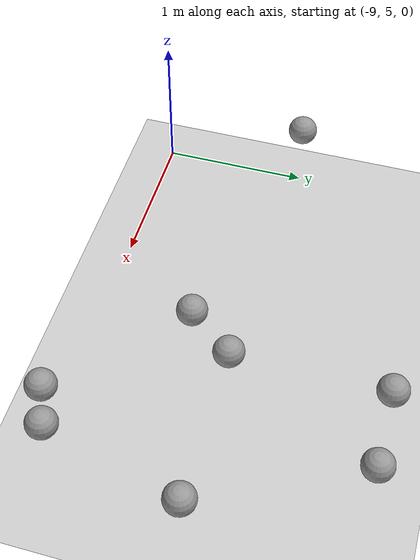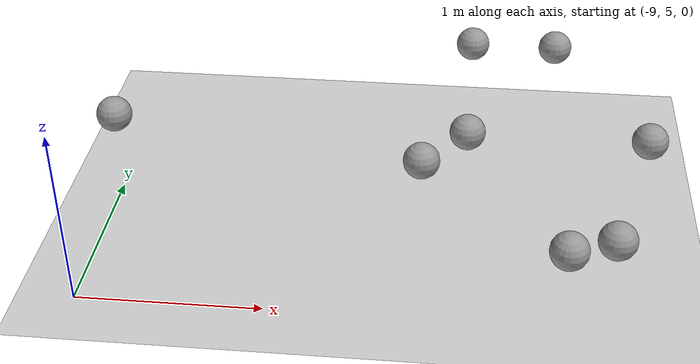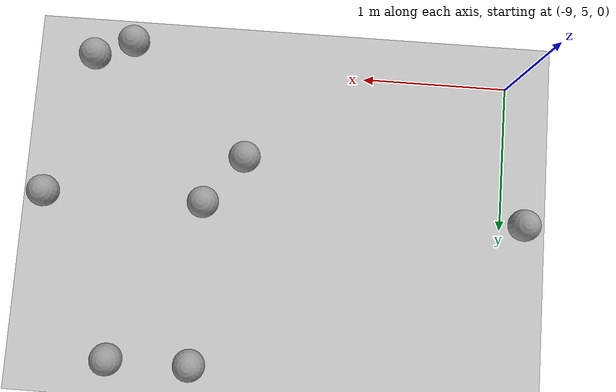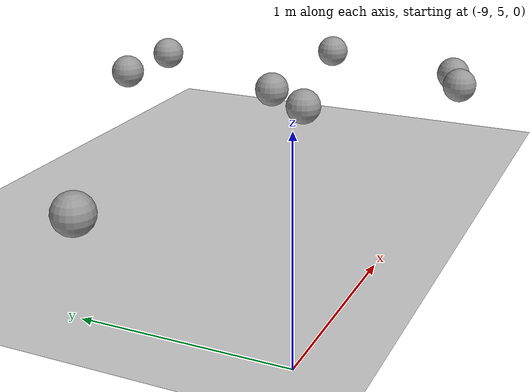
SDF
<sdf version="1.7">
 <world name="default">
  <model name="ground_plane">
   <static>1</static>
   <link name="link">
    <collision name="collision">
     <geometry><plane><normal>0 0 1</normal><size>100 100</size></plane></geometry>
     <surface>
      <contact><collide_bitmask>65535</collide_bitmask></contact>
      <friction><ode><mu>100</mu><mu2>50</mu2></ode></friction>
     </surface>
    </collision>
    <visual name="visual">
     <cast_shadows>0</cast_shadows>
     <geometry><plane><normal>0 0 1</normal><size>100 100</size></plane></geometry>
     <material>
      <script><uri>file://media/materials/scripts/gazebo.material</uri><name>Gazebo/Grey</name></script>
     </material>
    </visual>
   </link>
  </model>
  <model name="0.1unit_sphere_clone_3">
   <link name="link">
    <inertial>
     <mass>1</mass>
     <inertia><ixx>0.1</ixx><ixy>0</ixy><ixz>0</ixz><iyy>0.1</iyy><iyz>0</iyz><izz>0.1</izz></inertia>
    </inertial>
    <visual name="visual">
     <geometry><sphere><radius>0.1</radius></sphere></geometry>
     <material>
      <script><name>Gazebo/Grey</name><uri>file://media/materials/scripts/gazebo.material</uri></script>
      <shader type="pixel"><normal_map>__default__</normal_map></shader>
      <ambient>0.3 0.3 0.3 1</ambient>
      <diffuse>0.7 0.7 0.7 1</diffuse>
      <specular>0.01 0.01 0.01 1</specular>
      <emissive>0 0 0 1</emissive>
     </material>
    </visual>
    <collision name="collision">
     <geometry><sphere><radius>0.1</radius></sphere></geometry>
     <surface>
      <friction>
       <ode><mu>1</mu><mu2>1</mu2><fdir1>0 0 0</fdir1><slip1>0</slip1><slip2>0</slip2></ode>
       <torsional>
        <coefficient>1</coefficient>
        <patch_radius>0</patch_radius>
        <surface_radius>0</surface_radius>
        <use_patch_radius>1</use_patch_radius>
        <ode><slip>0</slip></ode>
       </torsional>
      </friction>
      <bounce><restitution_coefficient>0</restitution_coefficient><threshold>1e+06</threshold></bounce>
      <contact>
       <collide_without_contact>0</collide_without_contact>
       <collide_without_contact_bitmask>1</collide_without_contact_bitmask>
       <collide_bitmask>1</collide_bitmask>
       <ode>
        <soft_cfm>0</soft_cfm>
        <soft_erp>0.2</soft_erp>
        <kp>1e+13</kp>
        <kd>1</kd>
        <max_vel>0.01</max_vel>
        <min_depth>0</min_depth>
       </ode>
       <bullet>
        <split_impulse>1</split_impulse>
        <split_impulse_penetration_threshold>-0.01</split_impulse_penetration_threshold>
        <soft_cfm>0</soft_cfm>
        <soft_erp>0.2</soft_erp>
        <kp>1e+13</kp>
        <kd>1</kd>
       </bullet>
      </contact>
     </surface>
    </collision>
   </link>
   <static>0</static>
   <pose>-7.23602 5.69775 0.5 0 -0 0</pose>
  </model>
  <model name="0.1unit_sphere_clone_4">
   <link name="link">
    <inertial>
     <mass>1</mass>
     <inertia><ixx>0.1</ixx><ixy>0</ixy><ixz>0</ixz><iyy>0.1</iyy><iyz>0</iyz><izz>0.1</izz></inertia>
    </inertial>
    <visual name="visual">
     <geometry><sphere><radius>0.1</radius></sphere></geometry>
     <material>
      <script><name>Gazebo/Grey</name><uri>file://media/materials/scripts/gazebo.material</uri></script>
      <shader type="pixel"><normal_map>__default__</normal_map></shader>
      <ambient>0.3 0.3 0.3 1</ambient>
      <diffuse>0.7 0.7 0.7 1</diffuse>
      <specular>0.01 0.01 0.01 1</specular>
      <emissive>0 0 0 1</emissive>
     </material>
    </visual>
    <collision name="collision">
     <geometry><sphere><radius>0.1</radius></sphere></geometry>
     <surface>
      <friction>
       <ode><mu>1</mu><mu2>1</mu2><fdir1>0 0 0</fdir1><slip1>0</slip1><slip2>0</slip2></ode>
       <torsional>
        <coefficient>1</coefficient>
        <patch_radius>0</patch_radius>
        <surface_radius>0</surface_radius>
        <use_patch_radius>1</use_patch_radius>
        <ode><slip>0</slip></ode>
       </torsional>
      </friction>
      <bounce><restitution_coefficient>0</restitution_coefficient><threshold>1e+06</threshold></bounce>
      <contact>
       <collide_without_contact>0</collide_without_contact>
       <collide_without_contact_bitmask>1</collide_without_contact_bitmask>
       <collide_bitmask>1</collide_bitmask>
       <ode>
        <soft_cfm>0</soft_cfm>
        <soft_erp>0.2</soft_erp>
        <kp>1e+13</kp>
        <kd>1</kd>
        <max_vel>0.01</max_vel>
        <min_depth>0</min_depth>
       </ode>
       <bullet>
        <split_impulse>1</split_impulse>
        <split_impulse_penetration_threshold>-0.01</split_impulse_penetration_threshold>
        <soft_cfm>0</soft_cfm>
        <soft_erp>0.2</soft_erp>
        <kp>1e+13</kp>
        <kd>1</kd>
       </bullet>
      </contact>
     </surface>
    </collision>
   </link>
   <static>0</static>
   <pose>-6 6 0.5 0 -0 0</pose>
  </model>
  <model name="0.1unit_sphere_clone_5">
   <link name="link">
    <inertial>
     <mass>1</mass>
     <inertia><ixx>0.1</ixx><ixy>0</ixy><ixz>0</ixz><iyy>0.1</iyy><iyz>0</iyz><izz>0.1</izz></inertia>
    </inertial>
    <visual name="visual">
     <geometry><sphere><radius>0.1</radius></sphere></geometry>
     <material>
      <script><name>Gazebo/Grey</name><uri>file://media/materials/scripts/gazebo.material</uri></script>
      <shader type="pixel"><normal_map>__default__</normal_map></shader>
      <ambient>0.3 0.3 0.3 1</ambient>
      <diffuse>0.7 0.7 0.7 1</diffuse>
      <specular>0.01 0.01 0.01 1</specular>
      <emissive>0 0 0 1</emissive>
     </material>
    </visual>
    <collision name="collision">
     <geometry><sphere><radius>0.1</radius></sphere></geometry>
     <surface>
      <friction>
       <ode><mu>1</mu><mu2>1</mu2><fdir1>0 0 0</fdir1><slip1>0</slip1><slip2>0</slip2></ode>
       <torsional>
        <coefficient>1</coefficient>
        <patch_radius>0</patch_radius>
        <surface_radius>0</surface_radius>
        <use_patch_radius>1</use_patch_radius>
        <ode><slip>0</slip></ode>
       </torsional>
      </friction>
      <bounce><restitution_coefficient>0</restitution_coefficient><threshold>1e+06</threshold></bounce>
      <contact>
       <collide_without_contact>0</collide_without_contact>
       <collide_without_contact_bitmask>1</collide_without_contact_bitmask>
       <collide_bitmask>1</collide_bitmask>
       <ode>
        <soft_cfm>0</soft_cfm>
        <soft_erp>0.2</soft_erp>
        <kp>1e+13</kp>
        <kd>1</kd>
        <max_vel>0.01</max_vel>
        <min_depth>0</min_depth>
       </ode>
       <bullet>
        <split_impulse>1</split_impulse>
        <split_impulse_penetration_threshold>-0.01</split_impulse_penetration_threshold>
        <soft_cfm>0</soft_cfm>
        <soft_erp>0.2</soft_erp>
        <kp>1e+13</kp>
        <kd>1</kd>
       </bullet>
      </contact>
     </surface>
    </collision>
   </link>
   <static>0</static>
   <pose>-7 7 0.5 0 -0 0</pose>
  </model>
  <model name="0.1unit_sphere_clone_6">
   <link name="link">
    <inertial>
     <mass>1</mass>
     <inertia><ixx>0.1</ixx><ixy>0</ixy><ixz>0</ixz><iyy>0.1</iyy><iyz>0</iyz><izz>0.1</izz></inertia>
    </inertial>
    <visual name="visual">
     <geometry><sphere><radius>0.1</radius></sphere></geometry>
     <material>
      <script><name>Gazebo/Grey</name><uri>file://media/materials/scripts/gazebo.material</uri></script>
      <shader type="pixel"><normal_map>__default__</normal_map></shader>
      <ambient>0.3 0.3 0.3 1</ambient>
      <diffuse>0.7 0.7 0.7 1</diffuse>
      <specular>0.01 0.01 0.01 1</specular>
      <emissive>0 0 0 1</emissive>
     </material>
    </visual>
    <collision name="collision">
     <geometry><sphere><radius>0.1</radius></sphere></geometry>
     <surface>
      <friction>
       <ode><mu>1</mu><mu2>1</mu2><fdir1>0 0 0</fdir1><slip1>0</slip1><slip2>0</slip2></ode>
       <torsional>
        <coefficient>1</coefficient>
        <patch_radius>0</patch_radius>
        <surface_radius>0</surface_radius>
        <use_patch_radius>1</use_patch_radius>
        <ode><slip>0</slip></ode>
       </torsional>
      </friction>
      <bounce><restitution_coefficient>0</restitution_coefficient><threshold>1e+06</threshold></bounce>
      <contact>
       <collide_without_contact>0</collide_without_contact>
       <collide_without_contact_bitmask>1</collide_without_contact_bitmask>
       <collide_bitmask>1</collide_bitmask>
       <ode>
        <soft_cfm>0</soft_cfm>
        <soft_erp>0.2</soft_erp>
        <kp>1e+13</kp>
        <kd>1</kd>
        <max_vel>0.01</max_vel>
        <min_depth>0</min_depth>
       </ode>
       <bullet>
        <split_impulse>1</split_impulse>
        <split_impulse_penetration_threshold>-0.01</split_impulse_penetration_threshold>
        <soft_cfm>0</soft_cfm>
        <soft_erp>0.2</soft_erp>
        <kp>1e+13</kp>
        <kd>1</kd>
       </bullet>
      </contact>
     </surface>
    </collision>
   </link>
   <static>0</static>
   <pose>-7 6 0.5 0 -0 0</pose>
  </model>
  <model name="0.1unit_sphere_clone_9">
   <link name="link">
    <inertial>
     <mass>1</mass>
     <inertia><ixx>0.1</ixx><ixy>0</ixy><ixz>0</ixz><iyy>0.1</iyy><iyz>0</iyz><izz>0.1</izz></inertia>
    </inertial>
    <visual name="visual">
     <geometry><sphere><radius>0.1</radius></sphere></geometry>
     <material>
      <script><name>Gazebo/Grey</name><uri>file://media/materials/scripts/gazebo.material</uri></script>
      <shader type="pixel"><normal_map>__default__</normal_map></shader>
      <ambient>0.3 0.3 0.3 1</ambient>
      <diffuse>0.7 0.7 0.7 1</diffuse>
      <specular>0.01 0.01 0.01 1</specular>
      <emissive>0 0 0 1</emissive>
     </material>
    </visual>
    <collision name="collision">
     <geometry><sphere><radius>0.1</radius></sphere></geometry>
     <surface>
      <friction>
       <ode><mu>1</mu><mu2>1</mu2><fdir1>0 0 0</fdir1><slip1>0</slip1><slip2>0</slip2></ode>
       <torsional>
        <coefficient>1</coefficient>
        <patch_radius>0</patch_radius>
        <surface_radius>0</surface_radius>
        <use_patch_radius>1</use_patch_radius>
        <ode><slip>0</slip></ode>
       </torsional>
      </friction>
      <bounce><restitution_coefficient>0</restitution_coefficient><threshold>1e+06</threshold></bounce>
      <contact>
       <collide_without_contact>0</collide_without_contact>
       <collide_without_contact_bitmask>1</collide_without_contact_bitmask>
       <collide_bitmask>1</collide_bitmask>
       <ode>
        <soft_cfm>0</soft_cfm>
        <soft_erp>0.2</soft_erp>
        <kp>1e+13</kp>
        <kd>1</kd>
        <max_vel>0.01</max_vel>
        <min_depth>0</min_depth>
       </ode>
       <bullet>
        <split_impulse>1</split_impulse>
        <split_impulse_penetration_threshold>-0.01</split_impulse_penetration_threshold>
        <soft_cfm>0</soft_cfm>
        <soft_erp>0.2</soft_erp>
        <kp>1e+13</kp>
        <kd>1</kd>
       </bullet>
      </contact>
     </surface>
    </collision>
   </link>
   <static>0</static>
   <pose>-6.47229 5 0.5 0 -0 0</pose>
  </model>
  <model name="0.1unit_sphere_clone_10">
   <link name="link">
    <inertial>
     <mass>1</mass>
     <inertia><ixx>0.1</ixx><ixy>0</ixy><ixz>0</ixz><iyy>0.1</iyy><iyz>0</iyz><izz>0.1</izz></inertia>
    </inertial>
    <visual name="visual">
     <geometry><sphere><radius>0.1</radius></sphere></geometry>
     <material>
      <script><name>Gazebo/Grey</name><uri>file://media/materials/scripts/gazebo.material</uri></script>
      <shader type="pixel"><normal_map>__default__</normal_map></shader>
      <ambient>0.3 0.3 0.3 1</ambient>
      <diffuse>0.7 0.7 0.7 1</diffuse>
      <specular>0.01 0.01 0.01 1</specular>
      <emissive>0 0 0 1</emissive>
     </material>
    </visual>
    <collision name="collision">
     <geometry><sphere><radius>0.1</radius></sphere></geometry>
     <surface>
      <friction>
       <ode><mu>1</mu><mu2>1</mu2><fdir1>0 0 0</fdir1><slip1>0</slip1><slip2>0</slip2></ode>
       <torsional>
        <coefficient>1</coefficient>
        <patch_radius>0</patch_radius>
        <surface_radius>0</surface_radius>
        <use_patch_radius>1</use_patch_radius>
        <ode><slip>0</slip></ode>
       </torsional>
      </friction>
      <bounce><restitution_coefficient>0</restitution_coefficient><threshold>1e+06</threshold></bounce>
      <contact>
       <collide_without_contact>0</collide_without_contact>
       <collide_without_contact_bitmask>1</collide_without_contact_bitmask>
       <collide_bitmask>1</collide_bitmask>
       <ode>
        <soft_cfm>0</soft_cfm>
        <soft_erp>0.2</soft_erp>
        <kp>1e+13</kp>
        <kd>1</kd>
        <max_vel>0.01</max_vel>
        <min_depth>0</min_depth>
       </ode>
       <bullet>
        <split_impulse>1</split_impulse>
        <split_impulse_penetration_threshold>-0.01</split_impulse_penetration_threshold>
        <soft_cfm>0</soft_cfm>
        <soft_erp>0.2</soft_erp>
        <kp>1e+13</kp>
        <kd>1</kd>
       </bullet>
      </contact>
     </surface>
    </collision>
   </link>
   <static>0</static>
   <pose>-6.49478 7 0.5 0 -0 0</pose>
  </model>
  <model name="0.1unit_sphere_clone_14">
   <link name="link">
    <inertial>
     <mass>1</mass>
     <inertia><ixx>0.1</ixx><ixy>0</ixy><ixz>0</ixz><iyy>0.1</iyy><iyz>0</iyz><izz>0.1</izz></inertia>
    </inertial>
    <visual name="visual">
     <geometry><sphere><radius>0.1</radius></sphere></geometry>
     <material>
      <script><name>Gazebo/Grey</name><uri>file://media/materials/scripts/gazebo.material</uri></script>
      <shader type="pixel"><normal_map>__default__</normal_map></shader>
      <ambient>0.3 0.3 0.3 1</ambient>
      <diffuse>0.7 0.7 0.7 1</diffuse>
      <specular>0.01 0.01 0.01 1</specular>
      <emissive>0 0 0 1</emissive>
     </material>
    </visual>
    <collision name="collision">
     <geometry><sphere><radius>0.1</radius></sphere></geometry>
     <surface>
      <friction>
       <ode><mu>1</mu><mu2>1</mu2><fdir1>0 0 0</fdir1><slip1>0</slip1><slip2>0</slip2></ode>
       <torsional>
        <coefficient>1</coefficient>
        <patch_radius>0</patch_radius>
        <surface_radius>0</surface_radius>
        <use_patch_radius>1</use_patch_radius>
        <ode><slip>0</slip></ode>
       </torsional>
      </friction>
      <bounce><restitution_coefficient>0</restitution_coefficient><threshold>1e+06</threshold></bounce>
      <contact>
       <collide_without_contact>0</collide_without_contact>
       <collide_without_contact_bitmask>1</collide_without_contact_bitmask>
       <collide_bitmask>1</collide_bitmask>
       <ode>
        <soft_cfm>0</soft_cfm>
        <soft_erp>0.2</soft_erp>
        <kp>1e+13</kp>
        <kd>1</kd>
        <max_vel>0.01</max_vel>
        <min_depth>0</min_depth>
       </ode>
       <bullet>
        <split_impulse>1</split_impulse>
        <split_impulse_penetration_threshold>-0.01</split_impulse_penetration_threshold>
        <soft_cfm>0</soft_cfm>
        <soft_erp>0.2</soft_erp>
        <kp>1e+13</kp>
        <kd>1</kd>
       </bullet>
      </contact>
     </surface>
    </collision>
   </link>
   <static>0</static>
   <pose>-7 7 0.5 0 -0 0</pose>
  </model>
  <model name="0.1unit_sphere_clone_15">
   <link name="link">
    <inertial>
     <mass>1</mass>
     <inertia><ixx>0.1</ixx><ixy>0</ixy><ixz>0</ixz><iyy>0.1</iyy><iyz>0</iyz><izz>0.1</izz></inertia>
    </inertial>
    <visual name="visual">
     <geometry><sphere><radius>0.1</radius></sphere></geometry>
     <material>
      <script><name>Gazebo/Grey</name><uri>file://media/materials/scripts/gazebo.material</uri></script>
      <shader type="pixel"><normal_map>__default__</normal_map></shader>
      <ambient>0.3 0.3 0.3 1</ambient>
      <diffuse>0.7 0.7 0.7 1</diffuse>
      <specular>0.01 0.01 0.01 1</specular>
      <emissive>0 0 0 1</emissive>
     </material>
    </visual>
    <collision name="collision">
     <geometry><sphere><radius>0.1</radius></sphere></geometry>
     <surface>
      <friction>
       <ode><mu>1</mu><mu2>1</mu2><fdir1>0 0 0</fdir1><slip1>0</slip1><slip2>0</slip2></ode>
       <torsional>
        <coefficient>1</coefficient>
        <patch_radius>0</patch_radius>
        <surface_radius>0</surface_radius>
        <use_patch_radius>1</use_patch_radius>
        <ode><slip>0</slip></ode>
       </torsional>
      </friction>
      <bounce><restitution_coefficient>0</restitution_coefficient><threshold>1e+06</threshold></bounce>
      <contact>
       <collide_without_contact>0</collide_without_contact>
       <collide_without_contact_bitmask>1</collide_without_contact_bitmask>
       <collide_bitmask>1</collide_bitmask>
       <ode>
        <soft_cfm>0</soft_cfm>
        <soft_erp>0.2</soft_erp>
        <kp>1e+13</kp>
        <kd>1</kd>
        <max_vel>0.01</max_vel>
        <min_depth>0</min_depth>
       </ode>
       <bullet>
        <split_impulse>1</split_impulse>
        <split_impulse_penetration_threshold>-0.01</split_impulse_penetration_threshold>
        <soft_cfm>0</soft_cfm>
        <soft_erp>0.2</soft_erp>
        <kp>1e+13</kp>
        <kd>1</kd>
       </bullet>
      </contact>
     </surface>
    </collision>
   </link>
   <static>0</static>
   <pose>-9 6 0.5 0 -0 0</pose>
  </model>
  <model name="0.1unit_sphere_clone_42">
   <link name="link">
    <inertial>
     <mass>1</mass>
     <inertia><ixx>0.1</ixx><ixy>0</ixy><ixz>0</ixz><iyy>0.1</iyy><iyz>0</iyz><izz>0.1</izz></inertia>
    </inertial>
    <visual name="visual">
     <geometry><sphere><radius>0.1</radius></sphere></geometry>
     <material>
      <script><name>Gazebo/Grey</name><uri>file://media/materials/scripts/gazebo.material</uri></script>
      <shader type="pixel"><normal_map>__default__</normal_map></shader>
      <ambient>0.3 0.3 0.3 1</ambient>
      <diffuse>0.7 0.7 0.7 1</diffuse>
      <specular>0.01 0.01 0.01 1</specular>
      <emissive>0 0 0 1</emissive>
     </material>
    </visual>
    <collision name="collision">
     <geometry><sphere><radius>0.1</radius></sphere></geometry>
     <surface>
      <friction>
       <ode><mu>1</mu><mu2>1</mu2><fdir1>0 0 0</fdir1><slip1>0</slip1><slip2>0</slip2></ode>
       <torsional>
        <coefficient>1</coefficient>
        <patch_radius>0</patch_radius>
        <surface_radius>0</surface_radius>
        <use_patch_radius>1</use_patch_radius>
        <ode><slip>0</slip></ode>
       </torsional>
      </friction>
      <bounce><restitution_coefficient>0</restitution_coefficient><threshold>1e+06</threshold></bounce>
      <contact>
       <collide_without_contact>0</collide_without_contact>
       <collide_without_contact_bitmask>1</collide_without_contact_bitmask>
       <collide_bitmask>1</collide_bitmask>
       <ode>
        <soft_cfm>0</soft_cfm>
        <soft_erp>0.2</soft_erp>
        <kp>1e+13</kp>
        <kd>1</kd>
        <max_vel>0.01</max_vel>
        <min_depth>0</min_depth>
       </ode>
       <bullet>
        <split_impulse>1</split_impulse>
        <split_impulse_penetration_threshold>-0.01</split_impulse_penetration_threshold>
        <soft_cfm>0</soft_cfm>
        <soft_erp>0.2</soft_erp>
        <kp>1e+13</kp>
        <kd>1</kd>
       </bullet>
      </contact>
     </surface>
    </collision>
   </link>
   <static>0</static>
   <pose>-6.23298 5.10105 0.5 0 -0 0</pose>
  </model>
 </world>
</sdf>
